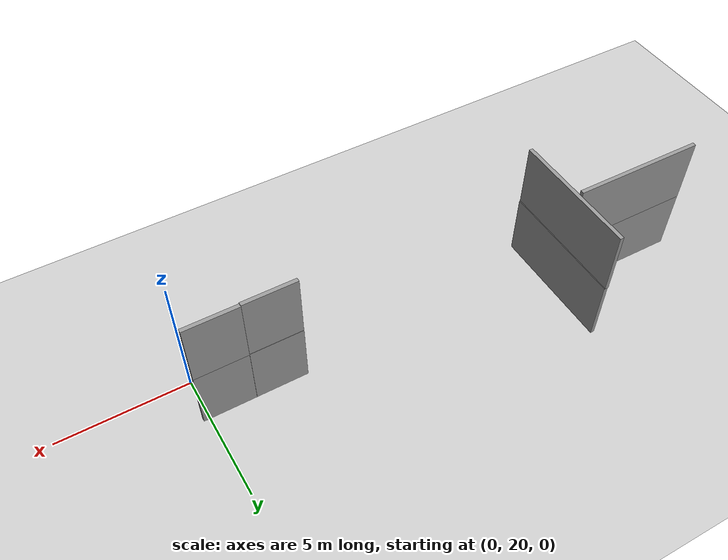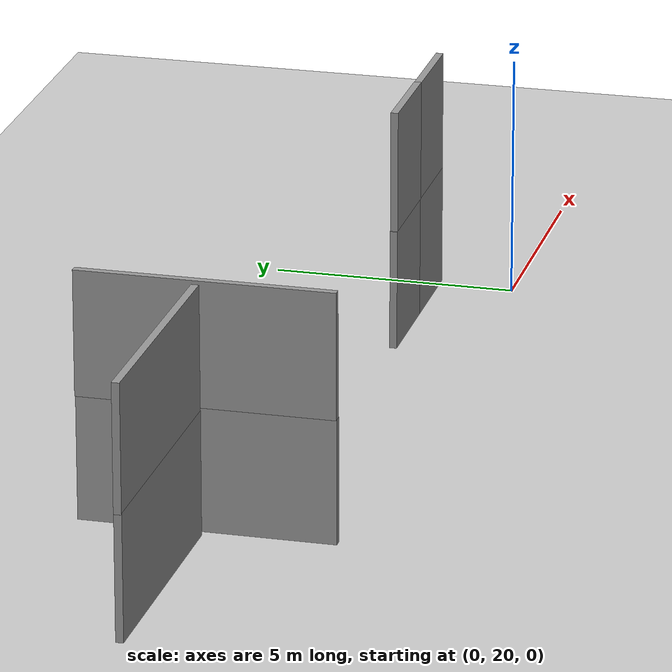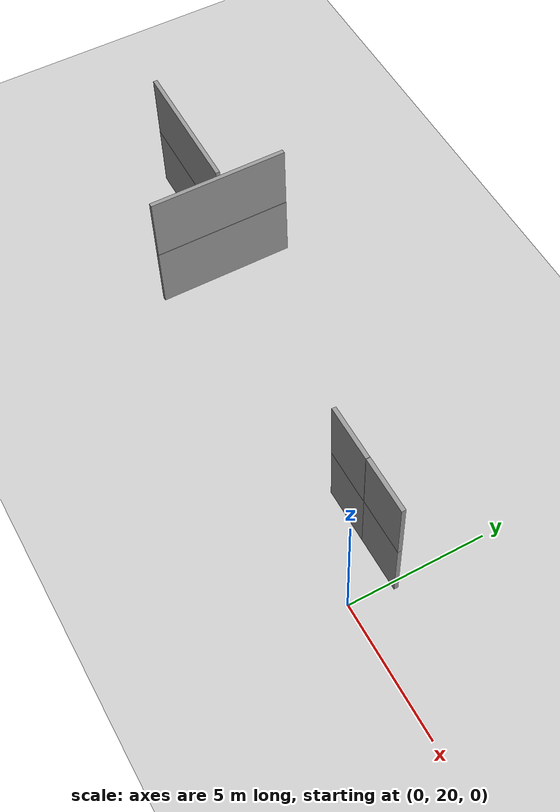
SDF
<sdf version="1.6">
 <world name="default">
  <model name="ground_plane">
   <static>1</static>
   <link name="link">
    <collision name="collision">
     <geometry><plane><normal>0 0 1</normal><size>100 100</size></plane></geometry>
     <surface><friction><ode><mu>100</mu><mu2>50</mu2></ode></friction></surface>
    </collision>
    <visual name="visual">
     <cast_shadows>0</cast_shadows>
     <geometry><plane><normal>0 0 1</normal><size>100 100</size></plane></geometry>
     <material>
      <script><uri>file://media/materials/scripts/gazebo.material</uri><name>Gazebo/Grey</name></script>
     </material>
    </visual>
   </link>
  </model>
  <model name="5mWall">
   <pose>-16.4333 22.9104 2.46833 0 -0 1.56041</pose>
   <link name="Wall_0">
    <collision name="Wall_0_Collision">
     <geometry><box><size>5 0.15 2.5</size></box></geometry>
     <pose>0 0 1.25 0 -0 0</pose>
    </collision>
    <visual name="Wall_0_Visual">
     <pose>0 0 1.25 0 -0 0</pose>
     <geometry><box><size>5 0.15 2.5</size></box></geometry>
     <material>
      <script><uri>file://media/materials/scripts/gazebo.material</uri><name>Gazebo/Grey</name></script>
      <ambient>1 1 1 1</ambient>
     </material>
     <meta><layer>0</layer></meta>
    </visual>
    <pose>0 -0 0 0 -0 1.5708</pose>
   </link>
   <static>1</static>
  </model>
  <model name="5mWall_0">
   <pose>-13.7019 22.7697 2.48433 0 -0 0</pose>
   <link name="Wall_0">
    <collision name="Wall_0_Collision">
     <geometry><box><size>5 0.15 2.5</size></box></geometry>
     <pose>0 0 1.25 0 -0 0</pose>
    </collision>
    <visual name="Wall_0_Visual">
     <pose>0 0 1.25 0 -0 0</pose>
     <geometry><box><size>5 0.15 2.5</size></box></geometry>
     <material>
      <script><uri>file://media/materials/scripts/gazebo.material</uri><name>Gazebo/Grey</name></script>
      <ambient>1 1 1 1</ambient>
     </material>
     <meta><layer>0</layer></meta>
    </visual>
    <pose>0 -0 0 0 -0 1.5708</pose>
   </link>
   <static>1</static>
  </model>
  <model name="5mWall_0_clone_0">
   <pose>-13.6787 22.7609 0 0 -0 0</pose>
   <link name="Wall_0">
    <collision name="Wall_0_Collision">
     <geometry><box><size>5 0.15 2.5</size></box></geometry>
     <pose>0 0 1.25 0 -0 0</pose>
    </collision>
    <visual name="Wall_0_Visual">
     <pose>0 0 1.25 0 -0 0</pose>
     <geometry><box><size>5 0.15 2.5</size></box></geometry>
     <material>
      <script><uri>file://media/materials/scripts/gazebo.material</uri><name>Gazebo/Grey</name></script>
      <ambient>1 1 1 1</ambient>
     </material>
     <meta><layer>0</layer></meta>
    </visual>
    <pose>0 -0 0 0 -0 1.5708</pose>
   </link>
   <static>1</static>
  </model>
  <model name="5mWall_clone_0">
   <pose>-16.4303 22.907 0 0 -0 1.56041</pose>
   <link name="Wall_0">
    <collision name="Wall_0_Collision">
     <geometry><box><size>5 0.15 2.5</size></box></geometry>
     <pose>0 0 1.25 0 -0 0</pose>
    </collision>
    <visual name="Wall_0_Visual">
     <pose>0 0 1.25 0 -0 0</pose>
     <geometry><box><size>5 0.15 2.5</size></box></geometry>
     <material>
      <script><uri>file://media/materials/scripts/gazebo.material</uri><name>Gazebo/Grey</name></script>
      <ambient>1 1 1 1</ambient>
     </material>
     <meta><layer>0</layer></meta>
    </visual>
    <pose>0 -0 0 0 -0 1.5708</pose>
   </link>
   <static>1</static>
  </model>
  <model name="2mWall">
   <pose>-2.772 21.6032 2.51079 0 -0 0</pose>
   <link name="Wall_0">
    <collision name="Wall_0_Collision">
     <geometry><box><size>2 0.15 2.5</size></box></geometry>
     <pose>0 0 1.25 0 -0 0</pose>
    </collision>
    <visual name="Wall_0_Visual">
     <pose>0 0 1.25 0 -0 0</pose>
     <geometry><box><size>2 0.15 2.5</size></box></geometry>
     <material>
      <script><uri>file://media/materials/scripts/gazebo.material</uri><name>Gazebo/Grey</name></script>
      <ambient>1 1 1 1</ambient>
     </material>
     <meta><layer>0</layer></meta>
    </visual>
   </link>
   <static>1</static>
  </model>
  <model name="2mWall_0">
   <pose>-0.769249 21.6167 2.48014 0 -0 0</pose>
   <link name="Wall_0">
    <collision name="Wall_0_Collision">
     <geometry><box><size>2 0.15 2.5</size></box></geometry>
     <pose>0 0 1.25 0 -0 0</pose>
    </collision>
    <visual name="Wall_0_Visual">
     <pose>0 0 1.25 0 -0 0</pose>
     <geometry><box><size>2 0.15 2.5</size></box></geometry>
     <material>
      <script><uri>file://media/materials/scripts/gazebo.material</uri><name>Gazebo/Grey</name></script>
      <ambient>1 1 1 1</ambient>
     </material>
     <meta><layer>0</layer></meta>
    </visual>
   </link>
   <static>1</static>
  </model>
  <model name="2mWall_clone">
   <pose>-2.77161 21.6136 0 0 -0 0</pose>
   <link name="Wall_0">
    <collision name="Wall_0_Collision">
     <geometry><box><size>2 0.15 2.5</size></box></geometry>
     <pose>0 0 1.25 0 -0 0</pose>
    </collision>
    <visual name="Wall_0_Visual">
     <pose>0 0 1.25 0 -0 0</pose>
     <geometry><box><size>2 0.15 2.5</size></box></geometry>
     <material>
      <script><uri>file://media/materials/scripts/gazebo.material</uri><name>Gazebo/Grey</name></script>
      <ambient>1 1 1 1</ambient>
     </material>
     <meta><layer>0</layer></meta>
    </visual>
   </link>
   <static>1</static>
  </model>
  <model name="2mWall_0_clone">
   <pose>-0.769776 21.6145 0 0 -0 0</pose>
   <link name="Wall_0">
    <collision name="Wall_0_Collision">
     <geometry><box><size>2 0.15 2.5</size></box></geometry>
     <pose>0 0 1.25 0 -0 0</pose>
    </collision>
    <visual name="Wall_0_Visual">
     <pose>0 0 1.25 0 -0 0</pose>
     <geometry><box><size>2 0.15 2.5</size></box></geometry>
     <material>
      <script><uri>file://media/materials/scripts/gazebo.material</uri><name>Gazebo/Grey</name></script>
      <ambient>1 1 1 1</ambient>
     </material>
     <meta><layer>0</layer></meta>
    </visual>
   </link>
   <static>1</static>
  </model>
 </world>
</sdf>
